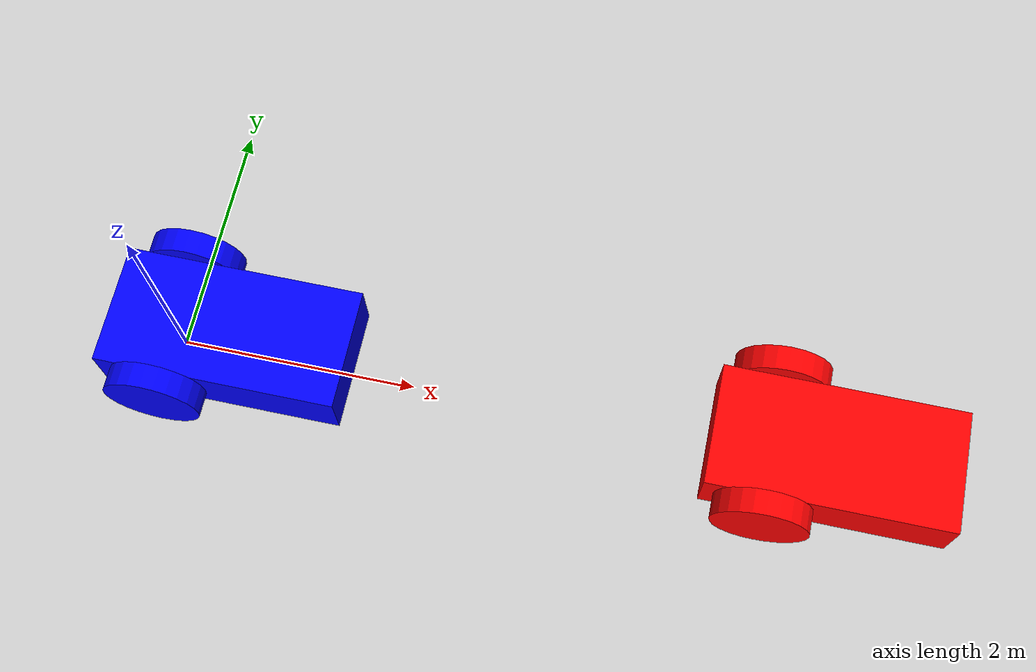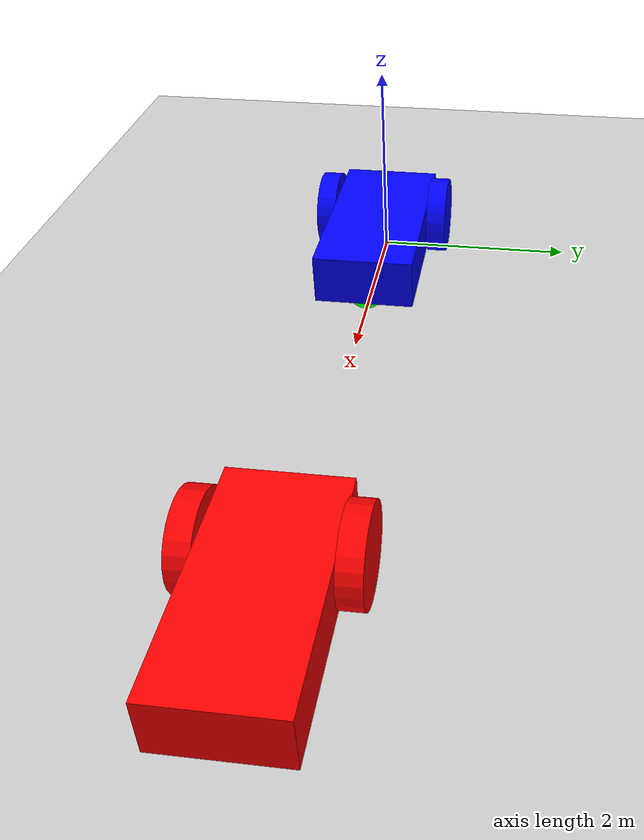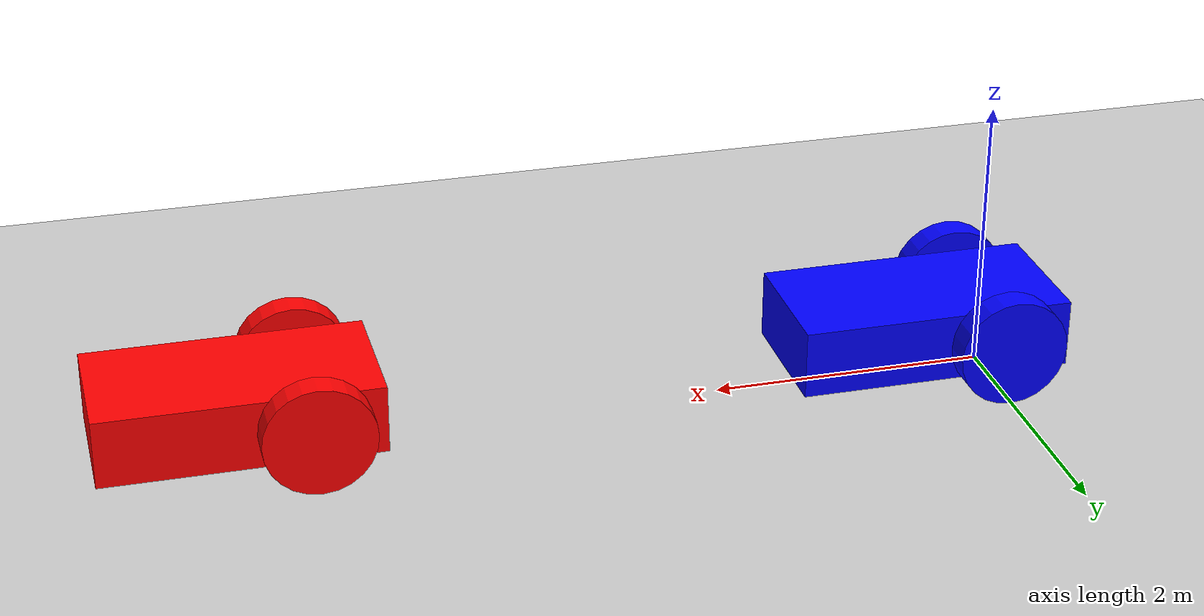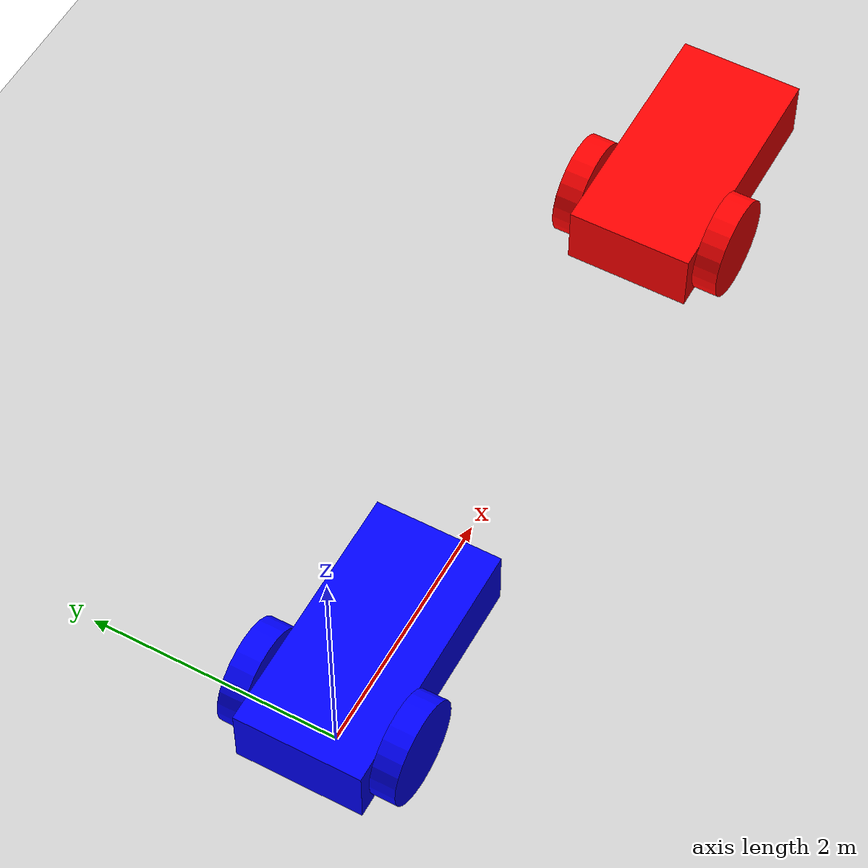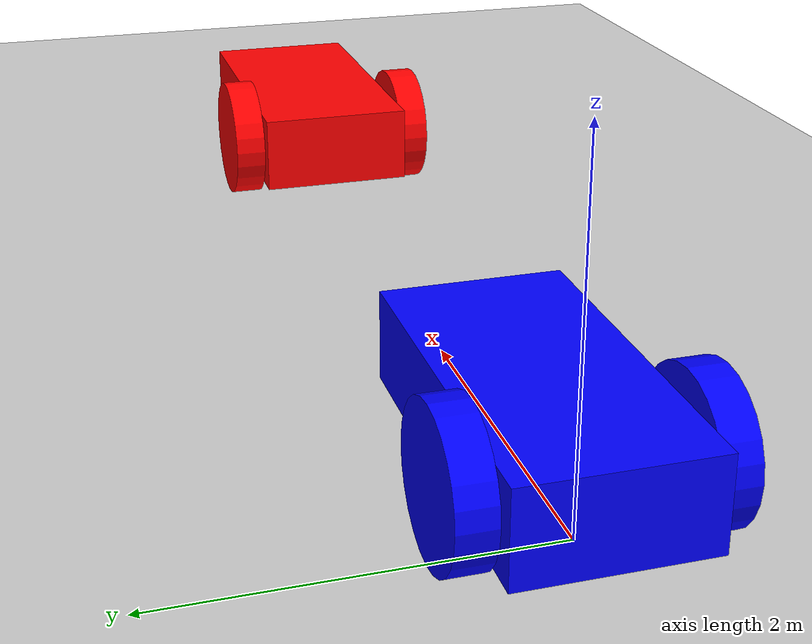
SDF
<?xml version="1.0" encoding="UTF-8"?>
<sdf version='1.9'>
  <world name='follow_red_car'>
    <physics name='1ms' type='ignored'>
      <max_step_size>0.001</max_step_size>
      <real_time_factor>1</real_time_factor>
      <real_time_update_rate>1000</real_time_update_rate>
    </physics>
    <plugin name='ignition::gazebo::systems::Physics' filename='ignition-gazebo-physics-system'/>
    <plugin name='ignition::gazebo::systems::UserCommands' filename='ignition-gazebo-user-commands-system'/>
    <plugin name='ignition::gazebo::systems::SceneBroadcaster' filename='ignition-gazebo-scene-broadcaster-system'/>
    <plugin name='ignition::gazebo::systems::Contact' filename='ignition-gazebo-contact-system'/>
    <plugin filename="libignition-gazebo-imu-system.so" name="ignition::gazebo::systems::Imu"/>
    <plugin filename="libignition-gazebo-sensors-system.so" name="ignition::gazebo::systems::Sensors"/>
    <gravity>0 0 -9.8</gravity>
    <magnetic_field>6e-06 2.3e-05 -4.2e-05</magnetic_field>
    <atmosphere type='adiabatic'/>
    <scene>
      <ambient>0.4 0.4 0.4 1</ambient>
      <background>0.7 0.7 0.7 1</background>
      <shadows>true</shadows>
    </scene>
    <model name='ground_plane'>
      <static>true</static>
      <link name='link'>
        <collision name='collision'>
          <geometry>
            <plane>
              <normal>0 0 1</normal>
              <size>100 100</size>
            </plane>
          </geometry>
          <surface>
            <friction>
              <ode/>
            </friction>
            <bounce/>
            <contact/>
          </surface>
        </collision>
        <visual name='visual'>
          <geometry>
            <plane>
              <normal>0 0 1</normal>
              <size>100 100</size>
            </plane>
          </geometry>
          <material>
            <ambient>0.8 0.8 0.8 1</ambient>
            <diffuse>0.8 0.8 0.8 1</diffuse>
            <specular>0.8 0.8 0.8 1</specular>
          </material>
        </visual>
        <pose>0 0 0 0 -0 0</pose>
        <inertial>
          <pose>0 0 0 0 -0 0</pose>
          <mass>1</mass>
          <inertia>
            <ixx>1</ixx>
            <ixy>0</ixy>
            <ixz>0</ixz>
            <iyy>1</iyy>
            <iyz>0</iyz>
            <izz>1</izz>
          </inertia>
        </inertial>
        <enable_wind>false</enable_wind>
      </link>
      <pose>0 0 0 0 -0 0</pose>
      <self_collide>false</self_collide>
    </model>

    <model name='little_car' canonical_link='chassis'>
      <pose relative_to='world'>0 0 0 0 0 0</pose>
      <link name='chassis'>
        <pose relative_to='__model__'>0.5 0 0.4 0 0 0</pose>
        <inertial> <!--inertial properties of the link mass, inertia matix-->
            <mass>1.14395</mass>
            <inertia>
              <ixx>0.095329</ixx>
              <ixy>0</ixy>
              <ixz>0</ixz>
              <iyy>0.381317</iyy>
              <iyz>0</iyz>
              <izz>0.476646</izz>
            </inertia>
          </inertial>
          <visual name='visual'>
            <geometry>
              <box>
                <size>2.0 1.0 0.5</size>
              </box>
            </geometry>
            <!--let's add color to our link-->
            <material>
              <ambient>0.0 0.0 1.0 1</ambient>
              <diffuse>0.0 0.0 1.0 1</diffuse>
              <specular>0.0 0.0 1.0 1</specular>
            </material>
          </visual>
          <collision name='collision'>
            <geometry>
              <box>
                <size>2.0 1.0 0.5</size>
              </box>
            </geometry>
          </collision>
          <sensor name="imu_sensor" type="imu">
            <always_on>1</always_on>
            <update_rate>1</update_rate>
            <visualize>true</visualize>
            <topic>imu</topic>
          </sensor>
          <sensor name='gpu_lidar' type='gpu_lidar'>"
            <pose relative_to='chassis'>1.0 0 0 0 0 0</pose>
            <topic>lidar</topic>
            <update_rate>10</update_rate>
            <ray>
            <scan>
              <horizontal>
                <samples>640</samples>
                <resolution>1</resolution>
                <min_angle>-1.396263</min_angle>
                <max_angle>1.396263</max_angle>
              </horizontal>
              <vertical>
                <samples>1</samples>
                <resolution>0.01</resolution>
                <min_angle>0</min_angle>
                <max_angle>0</max_angle>
              </vertical>
            </scan>
            <range>
                <min>0.08</min>
                <max>10.0</max>
                <resolution>0.01</resolution>
            </range>
          </ray>
            <always_on>1</always_on>
            <visualize>true</visualize>
          </sensor>
          <sensor name='camera' type='camera'>
          <pose>1 0 0.5 0 -0 0</pose>
          <topic>camera</topic>
          <update_rate>30</update_rate>
          <enable_metrics>false</enable_metrics>
          <camera name='__default__'>
            <pose>0 0 0 0 -0 0</pose>
            <horizontal_fov>1.0469999999999999</horizontal_fov>
            <image>
              <width>640</width>
              <height>480</height>
              <format>RGB_INT8</format>
              <anti_aliasing>4</anti_aliasing>
            </image>
          <clip>
            <near>0.10000000000000001</near>
            <far>100</far>
          </clip>
          <save enabled='false'>
            <path>__default__</path>
          </save>
          <visibility_mask>4294967295</visibility_mask>
          <noise>
              <type>none</type>
              <mean>0</mean>
              <stddev>0</stddev>
          </noise>
          <distortion>
            <k1>0</k1>
            <k2>0</k2>
            <k3>0</k3>
            <p1>0</p1>
            <p2>0</p2>
            <center>0.5 0.5</center>
          </distortion>
          <lens>
            <type>stereographic</type>
            <scale_to_hfov>true</scale_to_hfov>
            <cutoff_angle>1.5708</cutoff_angle>
            <env_texture_size>256</env_texture_size>
          </lens>
        </camera>
        </sensor>
        </link>
        <link name='left_wheel'>
          <pose relative_to="chassis">-0.5 0.6 0 -1.5707 0 0</pose>
          <inertial>
            <mass>1</mass>
            <inertia>
              <ixx>0.043333</ixx>
              <ixy>0</ixy>
              <ixz>0</ixz>
              <iyy>0.043333</iyy>
              <iyz>0</iyz>
              <izz>0.08</izz>
              </inertia>
            </inertial>
            <visual name='visual'>
              <geometry>
                <cylinder>
                  <radius>0.4</radius>
                  <length>0.2</length>
                </cylinder>
              </geometry>
              <material>
                <ambient>0.0 0.0 1.0 1</ambient>
                <diffuse>0.0 0.0 1.0 1</diffuse>
                <specular>0.0 0.0 1.0 1</specular>
              </material>
            </visual>
            <collision name='collision'>
              <geometry>
                <cylinder>
                  <radius>0.4</radius>
                  <length>0.2</length>
                </cylinder>
              </geometry>
            </collision>
        </link>
        <link name='right_wheel'>
          <pose relative_to="chassis">-0.5 -0.6 0 -1.5707 0 0</pose>
          <inertial>
            <mass>1</mass>
            <inertia>
              <ixx>0.043333</ixx>
              <ixy>0</ixy>
              <ixz>0</ixz>
              <iyy>0.043333</iyy>
              <iyz>0</iyz>
              <izz>0.08</izz>
              </inertia>
            </inertial>
            <visual name='visual'>
              <geometry>
                <cylinder>
                  <radius>0.4</radius>
                  <length>0.2</length>
                </cylinder>
              </geometry>
              <material>
                <ambient>0.0 0.0 1.0 1</ambient>
                <diffuse>0.0 0.0 1.0 1</diffuse>
                <specular>0.0 0.0 1.0 1</specular>
              </material>
            </visual>
            <collision name='collision'>
              <geometry>
                <cylinder>
                  <radius>0.4</radius>
                  <length>0.2</length>
                </cylinder>
              </geometry>
            </collision>
        </link>
        <frame name="caster_frame" attached_to='chassis'>
          <pose>0.8 0 -0.2 0 0 0</pose>
        </frame>
        <link name='caster'>
          <pose relative_to='caster_frame'/>
            <inertial>
              <mass>1</mass>
              <inertia>
                <ixx>0.016</ixx>
                <ixy>0</ixy>
                <ixz>0</ixz>
                <iyy>0.016</iyy>
                <iyz>0</iyz>
                <izz>0.016</izz>
              </inertia>
            </inertial>
            <visual name='visual'>
              <geometry>
                <sphere>
                  <radius>0.2</radius>
                </sphere>
              </geometry>
              <material>
                <ambient>0.0 1 0.0 1</ambient>
                <diffuse>0.0 1 0.0 1</diffuse>
                <specular>0.0 1 0.0 1</specular>
              </material>
            </visual>
            <collision name='collision'>
              <geometry>
                <sphere>
                  <radius>0.2</radius>
                </sphere>
              </geometry>
            </collision>
        </link>
        <!--轮子关节-->
        <joint name='left_wheel_joint' type='revolute'>
          <pose relative_to='left_wheel'/>
          <parent>chassis</parent>
          <child>left_wheel</child>
          <axis>
            <xyz expressed_in='__model__'>0 1 0</xyz>
            <limit>
              <lower>-1.79769e+308</lower>
              <upper>1.79769e+308</upper>
            </limit>
          </axis>
        </joint>
        <joint name='right_wheel_joint' type='revolute'>
          <pose relative_to='right_wheel'/>
          <parent>chassis</parent>
          <child>right_wheel</child>
          <axis>
            <xyz expressed_in='__model__'>0 1 0</xyz>
            <limit>
              <lower>-1.79769e+308</lower>
              <upper>1.79769e+308</upper>
            </limit>
          </axis>
        </joint>
        <!--球轮关节-->
        <joint name='caster_wheel' type='ball'>
          <parent>chassis</parent>
          <child>caster</child>
        </joint>
        <plugin
          filename="libignition-gazebo-diff-drive-system.so"
          name="ignition::gazebo::systems::DiffDrive">
          <left_joint>left_wheel_joint</left_joint>
          <right_joint>right_wheel_joint</right_joint>
          <wheel_separation>1.2</wheel_separation>
          <wheel_radius>0.4</wheel_radius>
          <odom_publish_frequency>1</odom_publish_frequency>
          <topic>cmd_vel</topic>
        </plugin>
    </model>

    <model name='red_car' canonical_link='chassis'>
      <pose relative_to='world'>5 0 0 0 0 0</pose>
      <link name='chassis'>
        <pose relative_to='__model__'>0.5 0 0.4 0 0 0</pose>
        <inertial> <!--inertial properties of the link mass, inertia matix-->
            <mass>1.14395</mass>
            <inertia>
              <ixx>0.095329</ixx>
              <ixy>0</ixy>
              <ixz>0</ixz>
              <iyy>0.381317</iyy>
              <iyz>0</iyz>
              <izz>0.476646</izz>
            </inertia>
          </inertial>
          <visual name='visual'>
            <geometry>
              <box>
                <size>2.0 1.0 0.5</size>
              </box>
            </geometry>
            <!--let's add color to our link-->
            <material>
              <ambient>1.0 0.0 0.0 1</ambient>
              <diffuse>1.0 0.0 0.0 1</diffuse>
              <specular>1.0 0.0 0.0 1</specular>
            </material>
          </visual>
          <collision name='collision'>
            <geometry>
              <box>
                <size>2.0 1.0 0.5</size>
              </box>
            </geometry>
          </collision>
          <sensor name="imu_sensor" type="imu">
            <always_on>1</always_on>
            <update_rate>1</update_rate>
            <visualize>true</visualize>
            <topic>imu</topic>
          </sensor>
          <sensor name='gpu_lidar' type='gpu_lidar'>"
            <pose relative_to='chassis'>1.0 0 0 0 0 0</pose>
            <topic>lidar</topic>
            <update_rate>10</update_rate>
            <ray>
            <scan>
              <horizontal>
                <samples>640</samples>
                <resolution>1</resolution>
                <min_angle>-1.396263</min_angle>
                <max_angle>1.396263</max_angle>
              </horizontal>
              <vertical>
                <samples>1</samples>
                <resolution>0.01</resolution>
                <min_angle>0</min_angle>
                <max_angle>0</max_angle>
              </vertical>
            </scan>
            <range>
                <min>0.08</min>
                <max>10.0</max>
                <resolution>0.01</resolution>
            </range>
          </ray>
            <always_on>1</always_on>
            <visualize>true</visualize>
          </sensor>
        </link>
        <link name='left_wheel'>
          <pose relative_to="chassis">-0.5 0.6 0 -1.5707 0 0</pose>
          <inertial>
            <mass>1</mass>
            <inertia>
              <ixx>0.043333</ixx>
              <ixy>0</ixy>
              <ixz>0</ixz>
              <iyy>0.043333</iyy>
              <iyz>0</iyz>
              <izz>0.08</izz>
              </inertia>
            </inertial>
            <visual name='visual'>
              <geometry>
                <cylinder>
                  <radius>0.4</radius>
                  <length>0.2</length>
                </cylinder>
              </geometry>
              <material>
                <ambient>1.0 0.0 0.0 1</ambient>
                <diffuse>1.0 0.0 0.0 1</diffuse>
                <specular>1.0 0.0 0.0 1</specular>
              </material>
            </visual>
            <collision name='collision'>
              <geometry>
                <cylinder>
                  <radius>0.4</radius>
                  <length>0.2</length>
                </cylinder>
              </geometry>
            </collision>
        </link>
        <link name='right_wheel'>
          <pose relative_to="chassis">-0.5 -0.6 0 -1.5707 0 0</pose>
          <inertial>
            <mass>1</mass>
            <inertia>
              <ixx>0.043333</ixx>
              <ixy>0</ixy>
              <ixz>0</ixz>
              <iyy>0.043333</iyy>
              <iyz>0</iyz>
              <izz>0.08</izz>
              </inertia>
            </inertial>
            <visual name='visual'>
              <geometry>
                <cylinder>
                  <radius>0.4</radius>
                  <length>0.2</length>
                </cylinder>
              </geometry>
              <material>
                <ambient>1.0 0.0 0.0 1</ambient>
                <diffuse>1.0 0.0 0.0 1</diffuse>
                <specular>1.0 0.0 0.0 1</specular>
              </material>
            </visual>
            <collision name='collision'>
              <geometry>
                <cylinder>
                  <radius>0.4</radius>
                  <length>0.2</length>
                </cylinder>
              </geometry>
            </collision>
        </link>
        <frame name="caster_frame" attached_to='chassis'>
          <pose>0.8 0 -0.2 0 0 0</pose>
        </frame>
        <link name='caster'>
          <pose relative_to='caster_frame'/>
            <inertial>
              <mass>1</mass>
              <inertia>
                <ixx>0.016</ixx>
                <ixy>0</ixy>
                <ixz>0</ixz>
                <iyy>0.016</iyy>
                <iyz>0</iyz>
                <izz>0.016</izz>
              </inertia>
            </inertial>
            <visual name='visual'>
              <geometry>
                <sphere>
                  <radius>0.2</radius>
                </sphere>
              </geometry>
              <material>
                <ambient>0.0 1 0.0 1</ambient>
                <diffuse>0.0 1 0.0 1</diffuse>
                <specular>0.0 1 0.0 1</specular>
              </material>
            </visual>
            <collision name='collision'>
              <geometry>
                <sphere>
                  <radius>0.2</radius>
                </sphere>
              </geometry>
            </collision>
        </link>
        <!--轮子关节-->
        <joint name='left_wheel_joint' type='revolute'>
          <pose relative_to='left_wheel'/>
          <parent>chassis</parent>
          <child>left_wheel</child>
          <axis>
            <xyz expressed_in='__model__'>0 1 0</xyz>
            <limit>
              <lower>-1.79769e+308</lower>
              <upper>1.79769e+308</upper>
            </limit>
          </axis>
        </joint>
        <joint name='right_wheel_joint' type='revolute'>
          <pose relative_to='right_wheel'/>
          <parent>chassis</parent>
          <child>right_wheel</child>
          <axis>
            <xyz expressed_in='__model__'>0 1 0</xyz>
            <limit>
              <lower>-1.79769e+308</lower>
              <upper>1.79769e+308</upper>
            </limit>
          </axis>
        </joint>
        <!--球轮关节-->
        <joint name='caster_wheel' type='ball'>
          <parent>chassis</parent>
          <child>caster</child>
        </joint>
        <plugin
          filename="libignition-gazebo-diff-drive-system.so"
          name="ignition::gazebo::systems::DiffDrive">
          <left_joint>left_wheel_joint</left_joint>
          <right_joint>right_wheel_joint</right_joint>
          <wheel_separation>1.2</wheel_separation>
          <wheel_radius>0.4</wheel_radius>
          <odom_publish_frequency>1</odom_publish_frequency>
          <topic>red_cmd_vel</topic>
        </plugin>
    </model>

    <light name='sun' type='directional'>
      <pose>0 0 10 0 -0 0</pose>
      <cast_shadows>true</cast_shadows>
      <intensity>1</intensity>
      <direction>-0.5 0.1 -0.9</direction>
      <diffuse>0.8 0.8 0.8 1</diffuse>
      <specular>0.2 0.2 0.2 1</specular>
      <attenuation>
        <range>1000</range>
        <linear>0.01</linear>
        <constant>0.90000000000000002</constant>
        <quadratic>0.001</quadratic>
      </attenuation>
      <spot>
        <inner_angle>0</inner_angle>
        <outer_angle>0</outer_angle>
        <falloff>0</falloff>
      </spot>
    </light>
  </world>
</sdf>
